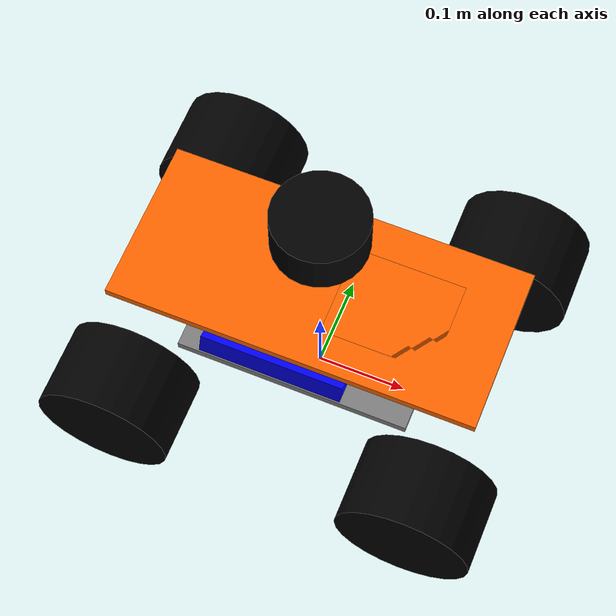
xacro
<?xml version="1.0"?>

<robot name="racecar" xmlns:xacro="http://www.ros.org/wiki/xacro">
  <xacro:include filename="$(find racecar_description)/urdf/sensors/lidar.xacro" />
  <xacro:include filename="$(find racecar_description)/urdf/sensors/imu.xacro" />
  <xacro:include filename="$(find racecar_description)/urdf/sensors/camera.xacro" />

  <xacro:property name="degrees_45" value="0.785398163"/>
  <xacro:property name="degrees_90" value="1.57079633"/>

  <xacro:property name="chassis_length" value="0.258"/>
  <xacro:property name="chassis_width" value="0.168"/>
  <xacro:property name="chassis_height" value="0.01"/>
  <xacro:property name="chassis_mass" value="2.788"/>

  <xacro:property name="battery_x_offset" value="0.055"/>
  <xacro:property name="battery_dist" value="0.065"/>
  <xacro:property name="battery_comp_depth" value="0.02"/>
  <xacro:property name="battery_comp_angle" value="0.34906585"/>
  <xacro:property name="battery_length" value="0.16"/>
  <xacro:property name="battery_width" value="0.047"/>
  <xacro:property name="battery_height" value="0.024"/>
  <xacro:property name="battery_mass" value="0.5025"/>

  <xacro:property name="hub_dia" value="0.09652"/>
  <xacro:property name="tire_dia" value="0.14605"/>
  <xacro:property name="tire_width" value="0.0889"/>
  <xacro:property name="hex_hub_depth" value="0.01445"/>
  <xacro:property name="wheel_mass" value="0.29"/>

  <xacro:property name="wheelbase" value="0.335"/>
  <xacro:property name="hex_hub_dist" value="0.365"/>
  <xacro:property name="axle_length" value="0.03"/>
  <xacro:property name="wheel_travel" value="0.084"/>
  <xacro:property name="shock_z_offset" value="0.0655"/>

  <xacro:property name="shock_eff_limit" value="12.5106"/>
  <xacro:property name="shock_vel_limit" value="1000"/>

  <xacro:property name="axle_eff_limit" value="5.12766"/>
  <xacro:property name="axle_vel_limit" value="244.8696"/>

  <xacro:property name="servo_stall_torque" value="10.0"/>
  <xacro:property name="servo_no_load_speed" value="4.553"/>

  <xacro:property name="layer_mass"   value="0.0" />
  <xacro:property name="layer_x" value="0.40"/>
  <xacro:property name="layer_y" value="0.18"/>
  <xacro:property name="layer_z" value="0.01"/>
  <xacro:property name="layer_height" value="0.08"/>

  <material name="battery_mat">
    <color rgba="0 0 1 1"/>
  </material>
  <material name="chassis_mat">
    <color rgba="0.5 0.5 0.5 1"/>
  </material>
  <material name="tire_mat">
    <color rgba="0 0 0 1"/>
  </material>
  <material name="yellow">
    <color rgba="1 0.4 0 1"/>
  </material>

  <xacro:macro name="null_inertial">
    <inertial>
      <mass value="0.001"/>
      <inertia ixx="0.001" ixy="0" ixz="0" iyy="0.001" iyz="0" izz="0.001"/>
    </inertial>
  </xacro:macro>

  <xacro:macro name="solid_cuboid_inertial"
               params="width depth height mass *origin">
    <inertial>
      <xacro:insert_block name="origin"/>
      <mass value="${mass}"/>
      <inertia ixx="${mass * (depth * depth + height * height) / 12}"
               ixy="0" ixz="0"
               iyy="${mass * (width * width + height * height) / 12}"
               iyz="0"
               izz="${mass * (width * width + depth * depth) / 12}"/>
    </inertial>
  </xacro:macro>

  <xacro:macro name="thick_walled_tube_inertial"
               params="inner_rad outer_rad height mass">
    <inertial>
      <mass value="${mass}"/>
      <inertia ixx="${(1 / 12) * mass * (3 * (inner_rad * inner_rad +
                    outer_rad * outer_rad) + height * height)}"
               ixy="0" ixz="0"
               iyy="${(1 / 12) * mass * (3 * (inner_rad * inner_rad +
                    outer_rad * outer_rad) + height * height)}"
               iyz="0"
               izz="${mass * (inner_rad * inner_rad +
                    outer_rad * outer_rad) / 2}"/>
    </inertial>
  </xacro:macro>

  <xacro:macro name="battery" params="prefix reflect">
    <joint name="chassis_to_${prefix}_battery" type="fixed">
      <parent link="chassis"/>
      <child link="${prefix}_battery_offset"/>
      <origin xyz="${battery_x_offset - battery_length / 2}
                   ${reflect * battery_dist / 2}
                   0"
              rpy="${reflect * battery_comp_angle} 0 0"/>
    </joint>

    <link name="${prefix}_battery_offset">
      <xacro:null_inertial/>
    </link>

    <joint name="offset_to_${prefix}_battery" type="fixed">
      <parent link="${prefix}_battery_offset"/>
      <child link="${prefix}_battery"/>
      <origin xyz="0
                   ${reflect * battery_width / 2}
                   ${(battery_height / 2) - battery_comp_depth}"/>
    </joint>

    <link name="${prefix}_battery">
      <visual>
        <geometry>
          <box size="${battery_length} ${battery_width} ${battery_height}"/>
        </geometry>
        <material name="battery_mat"/>
      </visual>

      <collision>
        <geometry>
          <box size="${battery_length} ${battery_width} ${battery_height}"/>
        </geometry>
      </collision>

      <xacro:solid_cuboid_inertial
         width="${battery_length}" depth="${battery_width}"
         height="${battery_height}" mass="${battery_mass}">
        <origin/>
      </xacro:solid_cuboid_inertial>
    </link>

    <gazebo reference="${prefix}_battery">
      <material>Gazebo/Blue</material>
    </gazebo>
  </xacro:macro>

  <xacro:macro name="shock"
               params="lr_prefix fr_prefix lr_reflect fr_reflect child">
    <joint name="${lr_prefix}_${fr_prefix}_shock" type="prismatic">
      <parent link="chassis"/>
      <child link="${child}"/>

      <origin xyz="${fr_reflect * wheelbase / 2}
                   ${lr_reflect * ((hex_hub_dist / 2) - axle_length)}
                   ${(wheel_travel / 2) - shock_z_offset}"/>
      <axis xyz="0 0 -1"/>
      <limit lower="${-wheel_travel / 2}" upper="${wheel_travel / 2}"
             effort="${shock_eff_limit}" velocity="${shock_vel_limit}"/>
    </joint>
    <transmission name="${lr_prefix}_${fr_prefix}_shock_trans">
      <type>transmission_interface/SimpleTransmission</type>
      <joint name="${lr_prefix}_${fr_prefix}_shock">
        <hardwareInterface>hardware_interface/EffortJointInterface</hardwareInterface>
      </joint>
      <actuator name="${lr_prefix}_${fr_prefix}_shock_act">
        <hardwareInterface>hardware_interface/EffortJointInterface</hardwareInterface>
        <mechanicalReduction>1</mechanicalReduction>
      </actuator>
    </transmission>
  </xacro:macro>

  <xacro:macro name="wheel" params="lr_prefix fr_prefix lr_reflect">
    <link name="${lr_prefix}_${fr_prefix}_axle_carrier">
      <xacro:null_inertial/>
    </link>

    <joint name="${lr_prefix}_${fr_prefix}_axle" type="continuous">
      <parent link="${lr_prefix}_${fr_prefix}_axle_carrier"/>
      <child link="${lr_prefix}_${fr_prefix}_wheel"/>
      <origin rpy="${degrees_90} 0 0"/>
      <axis xyz="0 0 -1"/>
      <limit effort="${axle_eff_limit}" velocity="${axle_vel_limit}"/>
    </joint>
    <transmission name="${lr_prefix}_${fr_prefix}_axle_trans">
      <type>transmission_interface/SimpleTransmission</type>
      <joint name="${lr_prefix}_${fr_prefix}_axle">
        <hardwareInterface>hardware_interface/EffortJointInterface</hardwareInterface>
      </joint>
      <actuator name="${lr_prefix}_${fr_prefix}_axle_act">
        <hardwareInterface>hardware_interface/EffortJointInterface</hardwareInterface>
        <mechanicalReduction>1</mechanicalReduction>
      </actuator>
    </transmission>

    <link name="${lr_prefix}_${fr_prefix}_wheel">
      <visual>
        <origin xyz="0
                     ${lr_reflect * (axle_length - (tire_width /
                     2 - hex_hub_depth))}
                     0"/>
        <geometry>
          <cylinder radius="${tire_dia / 2}" length="${tire_width}"/>
        </geometry>
        <material name="tire_mat"/>
      </visual>

      <collision>
        <origin xyz="0
                     ${lr_reflect * (axle_length - (tire_width /
                     2 - hex_hub_depth))}
                     0"/>
        <geometry>
          <cylinder radius="${tire_dia / 2}" length="${tire_width}"/>
        </geometry>
      </collision>

      <xacro:thick_walled_tube_inertial
          inner_rad="${hub_dia / 2}" outer_rad="${tire_dia / 2}"
          height="${tire_width}" mass="${wheel_mass}"/>
    </link>

    <gazebo reference="${lr_prefix}_${fr_prefix}_wheel">
      <material>Gazebo/Black</material>
    </gazebo>
  </xacro:macro>

  <xacro:macro name="front_wheel"
               params="lr_prefix fr_prefix lr_reflect fr_reflect">
    <xacro:shock lr_prefix="${lr_prefix}" fr_prefix="${fr_prefix}"
                 lr_reflect="${lr_reflect}" fr_reflect="${fr_reflect}"
                 child="${lr_prefix}_steering_link"/>

    <link name="${lr_prefix}_steering_link">
      <inertial>
        <mass value="0.1"/> <inertia ixx="0.01" ixy="0" ixz="0" iyy="0.01" iyz="0" izz="0.01"/>
      </inertial>
    </link>

    <joint name="${lr_prefix}_steering_joint" type="revolute">
      <parent link="${lr_prefix}_steering_link"/>
      <child link="${lr_prefix}_${fr_prefix}_axle_carrier"/>
      <axis xyz="0 0 1"/>
      <limit lower="${-degrees_45}" upper="${degrees_45}"
             effort="${servo_stall_torque}" velocity="${servo_no_load_speed}"/>
      <dynamics damping = "1.0" friction = "0.5"/>
    </joint>
    <transmission name="${lr_prefix}_steering_trans">
      <type>transmission_interface/SimpleTransmission</type>
      <joint name="${lr_prefix}_steering_joint">
        <hardwareInterface>hardware_interface/EffortJointInterface</hardwareInterface>
      </joint>
      <actuator name="${lr_prefix}_steering_act">
        <hardwareInterface>hardware_interface/EffortJointInterface</hardwareInterface>
        <mechanicalReduction>1</mechanicalReduction>
      </actuator>
    </transmission>

    <xacro:wheel lr_prefix="${lr_prefix}" fr_prefix="${fr_prefix}"
                 lr_reflect="${lr_reflect}"/>
  </xacro:macro>

  <xacro:macro name="rear_wheel"
               params="lr_prefix fr_prefix lr_reflect fr_reflect">
    <xacro:shock lr_prefix="${lr_prefix}" fr_prefix="${fr_prefix}"
                 lr_reflect="${lr_reflect}" fr_reflect="${fr_reflect}"
                 child="${lr_prefix}_${fr_prefix}_axle_carrier"/>
    <xacro:wheel lr_prefix="${lr_prefix}" fr_prefix="${fr_prefix}"
                 lr_reflect="${lr_reflect}"/>
  </xacro:macro>

  <xacro:macro name="layer" params="layer parent m x y z *joint_pose">
    <joint name="${layer}_joint" type="fixed">
      <xacro:insert_block name="joint_pose"/>
      <parent link="${parent}"/>
      <child link="${layer}_link" />
    </joint>

    <link name="${layer}_link">
      <visual>
        <origin xyz="0 0 0" rpy="0 0 0" />
        <geometry>
          <box size="${x} ${y} ${z}" />
        </geometry>
        <material name="yellow" />
      </visual>
      <collision>
        <origin xyz="0 0 0" rpy="0 0 0" />
        <geometry>
          <box size="${x} ${y} ${z}" />
        </geometry>
      </collision>
      <xacro:solid_cuboid_inertial
              width="${x}" depth="${y}"
              height="${z}" mass="${m}">
        <origin xyz="0 0 ${-z / 2}"/>
      </xacro:solid_cuboid_inertial>
    </link>

    <gazebo reference="${layer}_link">
      <material>Gazebo/Orange</material>
    </gazebo>
  </xacro:macro>

  <link name="base_footprint"/>

  <link name="base_link">
    <visual>
      <geometry>
        <box size="0.01 0.01 0.01"/>
      </geometry>
      <material name="chassis_mat"/>
    </visual>
  </link>
  <gazebo reference="base_link">
    <material>Gazebo/Grey</material>
  </gazebo>

  <joint name="base_footprint_to_base_link" type="fixed">
    <parent link="base_footprint"/>
    <child link="base_link"/>
    <origin xyz="0 0 ${(wheel_travel/2)+shock_z_offset}" />
  </joint>

  <link name="chassis">
    <visual>
      <origin xyz="0 0 ${-chassis_height / 2}"/>
      <geometry>
        <box size="${chassis_length} ${chassis_width} ${chassis_height}"/>
      </geometry>
      <material name="chassis_mat"/>
    </visual>

    <collision>
      <origin xyz="0 0 ${-chassis_height / 2}"/>
      <geometry>
        <box size="${chassis_length} ${chassis_width} ${chassis_height}"/>
      </geometry>
    </collision>

    <xacro:solid_cuboid_inertial
        width="${chassis_length}" depth="${chassis_width}"
        height="${chassis_height}" mass="${chassis_mass}">
      <origin xyz="0 0 ${-chassis_height / 2}"/>
    </xacro:solid_cuboid_inertial>
  </link>
  <gazebo reference="chassis">
    <material>Gazebo/Grey</material>
  </gazebo>

  <joint name="base_link_to_chassis" type="fixed">
    <parent link="base_link"/>
    <child link="chassis"/>
  </joint>

  <xacro:battery prefix="left" reflect="1"/>
  <xacro:battery prefix="right" reflect="-1"/>

  <xacro:front_wheel lr_prefix="left" fr_prefix="front"
                     lr_reflect="1" fr_reflect="1"/>
  <xacro:front_wheel lr_prefix="right" fr_prefix="front"
                     lr_reflect="-1" fr_reflect="1"/>
  <xacro:rear_wheel lr_prefix="left" fr_prefix="rear"
                    lr_reflect="1" fr_reflect="-1"/>
  <xacro:rear_wheel lr_prefix="right" fr_prefix="rear"
                    lr_reflect="-1" fr_reflect="-1"/>

  <gazebo>
    <plugin name="gazebo_ros_control" filename="libgazebo_ros_control.so">
    <legacyModeNS>true</legacyModeNS>
    <robotSimType>gazebo_ros_control/DefaultRobotHWSim</robotSimType>
    <robotNamespace>/racecar</robotNamespace>
    </plugin>
  </gazebo>

  <xacro:layer layer="platform" parent="chassis" m="${layer_mass}" x="${layer_x}" y="${layer_y}" z="${layer_z}">
    <origin xyz="0 0 ${layer_height}" rpy="0 0 0" />
  </xacro:layer>

  <xacro:layer layer="lidar_platform" parent="chassis" m="${layer_mass}" x="0.12" y="0.10" z="0.01">
    <origin xyz="0.08 0 ${layer_height}" rpy="0 0 0" />
  </xacro:layer>

  <xacro:lidar
    parent="base_link"
    prefix="laser"/>

  <joint name="imu_joint" type="fixed">
    <origin xyz="0.16 0 0.015" rpy="0 0 0" />
    <parent link="chassis"/>
    <child link="imu_link"/>
  </joint>

  <xacro:imu prefix="imu"/>

  <xacro:camera prefix="camera"/>

  <joint name="camera_joint" type="fixed">
    <origin xyz="0.16 0 0.05" rpy="0 0 0" />
    <parent link="chassis"/>
    <child link="camera_link"/>
  </joint>
</robot>

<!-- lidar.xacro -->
<robot xmlns:xacro="http://www.ros.org/wiki/xacro">

  <xacro:macro
      name="lidar"
      params="prefix:=laser parent">

    <!-- Create laser reference frame -->
    <link name="${prefix}_link">
      <inertial>
        <mass value="0.001" />
        <origin xyz="0 0 0" />
        <inertia
          ixx="0.001" ixy="0.0" ixz="0.0"
          iyy="0.001" iyz="0.0"
          izz="0.001" />
      </inertial>

      <visual>
        <origin xyz="0 0 0" rpy="0 0 0" />
        <geometry>
          <cylinder length="0.05" radius="0.05"/>
        </geometry>
        <material name="black">
          <color rgba="0 0 0 1"/>
        </material>
      </visual>

      <collision>
        <origin xyz="0 0 0" rpy="0 0 0" />
        <geometry>
          <cylinder length="0.06" radius="0.05"/>
        </geometry>
      </collision>
    </link>

    <!-- Joint: attach lidar to robot -->
    <joint name="${prefix}_joint" type="fixed">
      <parent link="${parent}"/>
      <child link="${prefix}_link"/>
      <origin xyz="0 0 0.2" rpy="0 0 0"/>
    </joint>

    <!-- Gazebo visual -->
    <gazebo reference="${prefix}_link">
      <material>Gazebo/Black</material>
    </gazebo>

    <!-- Gazebo lidar sensor -->
    <gazebo reference="${prefix}_link">
      <sensor type="ray" name="ls01g">
        <pose>0 0 0 0 0 0</pose>
        <visualize>false</visualize>
        <update_rate>10.0</update_rate>

        <ray>
          <scan>
            <horizontal>
              <samples>360</samples>
              <resolution>1</resolution>
              <min_angle>-3.1415926</min_angle>
              <max_angle>3.1415926</max_angle>
            </horizontal>
          </scan>

          <range>
            <min>0.20</min>
            <max>8.0</max>
            <resolution>0.01</resolution>
          </range>

          <noise>
            <type>gaussian</type>
            <mean>0.0</mean>
            <stddev>0.01</stddev>
          </noise>
        </ray>

        <plugin name="gazebo_ls01g"
                filename="libgazebo_ros_laser.so">
          <topicName>/scan</topicName>
          <frameName>${prefix}_link</frameName>
        </plugin>
      </sensor>
    </gazebo>

  </xacro:macro>

</robot>

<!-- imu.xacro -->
<robot name="racecar" xmlns:xacro="http://www.ros.org/wiki/xacro">

    <xacro:macro name="imu" params="prefix:=imu">
        <!-- Create laser reference frame -->
        <link name="${prefix}_link">
            <inertial>
                <mass value="0.001" />
                <origin xyz="0 0 0" />
                <inertia ixx="0.001" ixy="0.0" ixz="0.0"
                         iyy="0.001" iyz="0.0"
                         izz="0.001" />
            </inertial>

            <visual>
                <origin xyz=" 0 0 0 " rpy="0 0 0" />
                <geometry>
                    <box size="0.04 0.04 0.03" />
                </geometry>
                <material name="black"/>
            </visual>

            <collision>
                <origin xyz="0.0 0.0 0.0" rpy="0 0 0" />
                <geometry>
                    <box size="0.04 0.04 0.03" />
                </geometry>
            </collision>
        </link>
        <gazebo reference="${prefix}_link">
            <material>Gazebo/Black</material>
        </gazebo>

        <gazebo reference="${prefix}_link">
            <gravity>true</gravity>
            <sensor name="imu_sensor" type="imu">
                <always_on>true</always_on>
                <update_rate>100</update_rate>
                <visualize>true</visualize>
                <topic>/imu_data</topic>
                <plugin filename="libgazebo_ros_imu_sensor.so" name="imu_plugin">
                    <topicName>/imu_data</topicName>
                    <bodyName>imu_link</bodyName>
                    <updateRateHZ>100.0</updateRateHZ>
                    <gaussianNoise>0.0</gaussianNoise>
                    <xyzOffset>0 0 0</xyzOffset>
                    <rpyOffset>0 0 0</rpyOffset>
                    <frameName>imu_link</frameName>
                </plugin>
                <pose>0 0 0 0 0 0</pose>
            </sensor>
        </gazebo>

    </xacro:macro>
</robot>

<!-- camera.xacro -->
<robot xmlns:xacro="http://www.ros.org/wiki/xacro" name="camera">

    <xacro:macro name="camera" params="prefix:=camera">
	<link name="${prefix}_link">
	    <inertial>
		<mass value="0.001" />
		<origin xyz="0 0 0" />
		<inertia ixx="0.001" ixy="0.0" ixz="0.0"
		         iyy="0.001" iyz="0.0"
		         izz="0.001" />
	    </inertial>

	    <visual>
		<origin xyz=" 0 0 0 " rpy="1.57 0 1.57" />
		<geometry>
		    <box size="0.05 0.05 0.05" />
		</geometry>
	    </visual>

	    <collision>
		<origin xyz="0.0 0.0 0.0" rpy="0 0 0" />
		<geometry>
		    <box size="0.03 0.16 0.03" />
		</geometry>
	    </collision>
	</link>

	<gazebo reference="${prefix}_link">
	<material>Gazebo/Black</material>
	</gazebo>
	<gazebo reference="${prefix}_link">
		<sensor type="camera" name="camera_node">
			<pose>0 0 0 0 0 0</pose>
		        <update_rate>30.0</update_rate>
		        <camera name="head">
		            <horizontal_fov>1.3962634</horizontal_fov>
		            <image>
		                <width>1280</width>
		                <height>720</height>
		                <format>R8G8B8</format>
		            </image>
		            <clip>
		                <near>0.02</near>
		                <far>300</far>
		            </clip>
		            <noise>
		                <type>gaussian</type>
		                <mean>0.0</mean>
		                <stddev>0.007</stddev>
		            </noise>
		        </camera>
		        <plugin name="gazebo_camera" filename="libgazebo_ros_camera.so">
		            <alwaysOn>true</alwaysOn>
		            <updateRate>0.0</updateRate>
		            <cameraName>/camera</cameraName>
		            <imageTopicName>image_raw</imageTopicName>
		            <cameraInfoTopicName>camera_info</cameraInfoTopicName>
		            <frameName>${prefix}_link</frameName>
		            <hackBaseline>0.07</hackBaseline>
		            <distortionK1>0.0</distortionK1>
		            <distortionK2>0.0</distortionK2>
		            <distortionK3>0.0</distortionK3>
		            <distortionT1>0.0</distortionT1>
		            <distortionT2>0.0</distortionT2>
		        </plugin>
		    </sensor>
	  </gazebo>
    </xacro:macro>
</robot>
